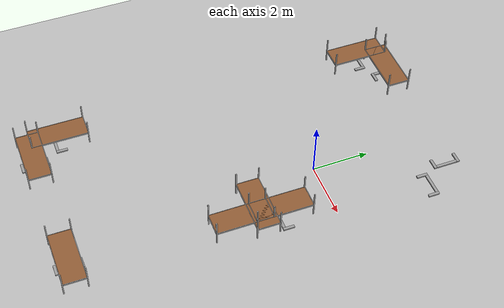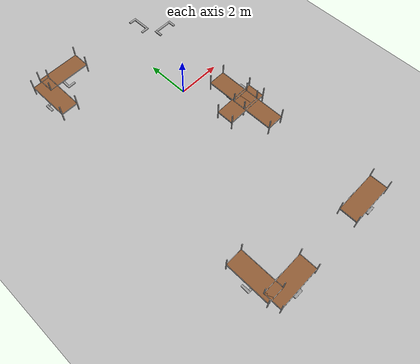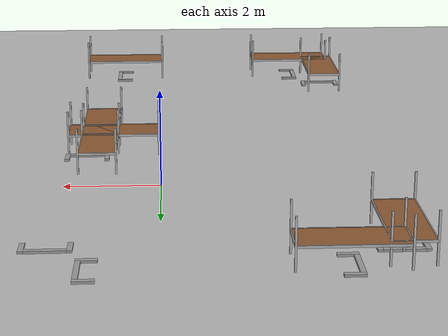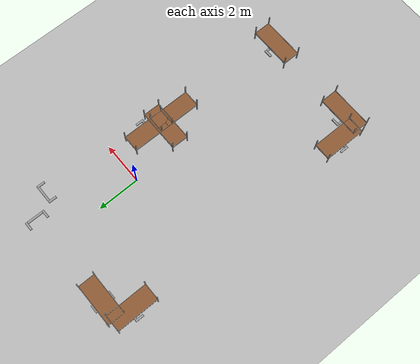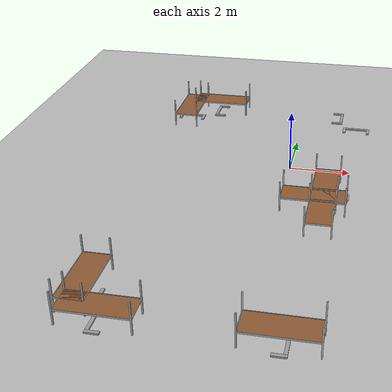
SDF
<sdf version="1.6">
 <world name="default">
  <light name="light0" type="directional">
   <pose>0 -18.818 8 0.75 -0 0</pose>
   <diffuse>0.5 0.5 0.5 1</diffuse>
   <specular>0.1 0.1 0.1 1</specular>
   <direction>0.1 0.1 -0.9</direction>
   <attenuation>
    <range>20</range>
    <constant>0.5</constant>
    <linear>0.01</linear>
    <quadratic>0.001</quadratic>
   </attenuation>
   <cast_shadows>0</cast_shadows>
  </light>
  <light name="light3" type="directional">
   <pose>3.9239 1.64974 4 0 1.2 0</pose>
   <diffuse>0.5 0.5 0.5 1</diffuse>
   <specular>0.1 0.1 0.1 1</specular>
   <direction>0.1 0.1 -0.9</direction>
   <attenuation>
    <range>20</range>
    <constant>0.5</constant>
    <linear>0.01</linear>
    <quadratic>0.001</quadratic>
   </attenuation>
   <cast_shadows>0</cast_shadows>
  </light>
  <light name="light5" type="directional">
   <pose>0.454419 12.4783 5 -0.8 0 0</pose>
   <diffuse>0.5 0.5 0.5 1</diffuse>
   <specular>0.1 0.1 0.1 1</specular>
   <direction>0.1 0.1 -0.9</direction>
   <attenuation>
    <range>20</range>
    <constant>0.5</constant>
    <linear>0.01</linear>
    <quadratic>0.001</quadratic>
   </attenuation>
   <cast_shadows>0</cast_shadows>
  </light>
  <scene>
   <shadows>false</shadows>
   <ambient>0.5 0.5 0.5 1.0</ambient>
   <grid>false</grid>
   <sky><time>22</time><sunrise>20</sunrise><sunset>21</sunset><clouds><humidity>0</humidity></clouds></sky>
  </scene>
  <include><uri>model://ground_plane</uri></include>
  <include><uri>model://moon_surface</uri><pose>0 0 -0.25 0 0 0</pose></include>
  <include><uri>model://rack_base</uri><name>rack_base</name><pose>1.421 4.35 0.05 0 -0 -1.57</pose></include>
  <include><uri>model://rack</uri><name>rack1</name><pose>1.05 -2.455 0.0 0 -0 3.14</pose></include>
  <include><uri>model://rack</uri><name>rack2</name><pose>1.35 -1.755 0.0 0 0 1.57</pose></include>
  <include><uri>model://rack</uri><name>rack3</name><pose>1.35 -3.155 0.0 0 0 -1.57</pose></include>
  <include><uri>model://rack</uri><name>rack4</name><pose>0.99 -8.86 0.1 0 -0 3.14</pose></include>
  <include><uri>model://rack</uri><name>rack5</name><pose>-3.46 -8.89 0.1 0 -0 0.0</pose></include>
  <include><uri>model://rack</uri><name>rack6</name><pose>-4.22 -7.85 0.1 0 -0 1.57</pose></include>
  <include><uri>model://rack</uri><name>rack7</name><pose>-4.28 3.52 0.1 0 -0 -1.57</pose></include>
  <include><uri>model://rack</uri><name>rack8</name><pose>-3.24 4.28 0.1 0 -0 0.0</pose></include>
  <plugin name="gazebo_link_attacher" filename="libgazebo_link_attacher.so"/>
 </world>
</sdf>

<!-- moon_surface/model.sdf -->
<sdf version="1.6">
  <model name="moon_surface">
    <static>true</static>

    <link name="link">
      <pose>0 0 0.003 0 0 0</pose>

      <visual name="visual1">
        <cast_shadows>false</cast_shadows>
        <geometry>
          <mesh><uri>model://moon_surface/meshes/moon_surface.dae</uri></mesh>
        </geometry>
        <material>
          <shader type='pixel'/>
        </material>
        <pose>0 0 0 0 0 0</pose>
        <transparency>0</transparency>
      </visual>
    </link>
  </model>
</sdf>

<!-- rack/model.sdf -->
<sdf version='1.6'>
  <model name='rack'>
    <link name="surface">
      <inertial>
          <mass>0.1</mass>
          <inertia>
              <ixx>0.00001</ixx>
              <ixy>0.000</ixy>
              <ixz>0.000</ixz>
              <iyy>0.00001</iyy>
              <iyz>0.000</iyz>
              <izz>0.00001</izz>
          </inertia>
      </inertial>
      <visual name='surface_visual'>
        <pose relative_to=''>0 0 0.45 0 0 0</pose>
        <geometry>
          <box>
            <size>2 0.8 0.03</size>
          </box>
        </geometry>
        <material>
          <ambient>0.55 0.35 0.2 1</ambient>
          <diffuse>0.55 0.35 0.2 1</diffuse>
          <specular>0.1 0.1 0.1 1</specular>
          <emissive>0 0 0 1</emissive>
        </material>
        <transparency>0</transparency>
        <cast_shadows>1</cast_shadows>
      </visual>
      <collision name='surface_collision'>
        <pose relative_to=''>0 0 0.45 0 0 0</pose>
        <laser_retro>0</laser_retro>
        <max_contacts>10</max_contacts>
        <geometry>
          <box>
            <size>2 0.82 0.03</size>
          </box>
        </geometry>
        <surface>
          <friction>
            <ode>
              <mu>1000000</mu>
              <mu2>1000000</mu2>
            </ode>
          </friction>
          <bounce>
            <restitution_coefficient>0</restitution_coefficient>
          </bounce>
          <contact>
            <ode>
              <kp>1e13</kp>
              <kd>1</kd>
            </ode>
          </contact>
        </surface>
      </collision>

      <visual name='left_holding_visual'>
        <pose relative_to=''>0 0.4 0.45 0 0 0</pose>
        <geometry>
          <box>
            <size>1.98 0.02 0.05</size>
          </box>
        </geometry>
        <material>
          <ambient>0.3 0.3 0.3 1</ambient>
          <diffuse>0.7 0.7 0.7 1</diffuse>
          <specular>0.01 0.01 0.01 1</specular>
          <emissive>0 0 0 1</emissive>
          <pbr>
            <metal>
              <roughness>0.8</roughness>
              <metalness>0.1</metalness>
            </metal>
          </pbr>
        </material>
        <transparency>0</transparency>
        <cast_shadows>1</cast_shadows>
      </visual>

      <visual name='right_holding_visual'>
        <pose relative_to=''>0 -0.4 0.45 0 0 0</pose>
        <geometry>
          <box>
            <size>1.98 0.02 0.05</size>
          </box>
        </geometry>
        <material>
          <ambient>0.3 0.3 0.3 1</ambient>
          <diffuse>0.7 0.7 0.7 1</diffuse>
          <specular>0.01 0.01 0.01 1</specular>
          <emissive>0 0 0 1</emissive>
          <pbr>
            <metal>
              <roughness>0.8</roughness>
              <metalness>0.1</metalness>
            </metal>
          </pbr>
        </material>
        <transparency>0</transparency>
        <cast_shadows>1</cast_shadows>
      </visual>

      <visual name='front_holding_visual'>
        <pose relative_to=''>1.0 0 0.45 0 0 1.57</pose>
        <geometry>
          <box>
            <size>0.8 0.02 0.05</size>
          </box>
        </geometry>
        <material>
          <ambient>0.3 0.3 0.3 1</ambient>
          <diffuse>0.7 0.7 0.7 1</diffuse>
          <specular>0.01 0.01 0.01 1</specular>
          <emissive>0 0 0 1</emissive>
          <pbr>
            <metal>
              <roughness>0.8</roughness>
              <metalness>0.1</metalness>
            </metal>
          </pbr>
        </material>
        <transparency>0</transparency>
        <cast_shadows>1</cast_shadows>
      </visual>

      <visual name='back_holding_visual'>
        <pose relative_to=''>-1.0 0 0.45 0 0 1.57</pose>
        <geometry>
          <box>
            <size>0.8 0.02 0.05</size>
          </box>
        </geometry>
        <material>
          <ambient>0.3 0.3 0.3 1</ambient>
          <diffuse>0.7 0.7 0.7 1</diffuse>
          <specular>0.01 0.01 0.01 1</specular>
          <emissive>0 0 0 1</emissive>
          <pbr>
            <metal>
              <roughness>0.8</roughness>
              <metalness>0.1</metalness>
            </metal>
          </pbr>
        </material>
        <transparency>0</transparency>
        <cast_shadows>1</cast_shadows>
      </visual>

      <visual name='front_left_leg_visual'>
        <pose relative_to=''>0.99 0.4 0.5 0 0 0</pose>
        <geometry>
          <box>
            <size>0.04 0.04 1.0</size>
          </box>
        </geometry>
        <material>
          <ambient>0.3 0.3 0.3 1</ambient>
          <diffuse>0.7 0.7 0.7 1</diffuse>
          <specular>0.01 0.01 0.01 1</specular>
          <emissive>0 0 0 1</emissive>
          <pbr>
            <metal>
              <roughness>0.8</roughness>
              <metalness>0.1</metalness>
            </metal>
          </pbr>
        </material>
        <cast_shadows>1</cast_shadows>
      </visual>
      <collision name='front_left_leg_collision'>
        <pose relative_to=''>0.99 0.4 0.5 0 0 0</pose>
        <laser_retro>0</laser_retro>
        <max_contacts>10</max_contacts>
        <geometry>
          <box>
            <size>0.04 0.04 1.0</size>
          </box>
        </geometry>
        <surface>
          <friction>
            <ode>
              <mu>0.1</mu>
              <mu2>0.1</mu2>
            </ode>
          </friction>
          <bounce>
            <restitution_coefficient>0</restitution_coefficient>
          </bounce>
          <contact>
            <ode>
              <kp>1e6</kp>
              <kd>1</kd>
            </ode>
          </contact>
        </surface>
      </collision>

      <visual name='front_right_leg_visual'>
        <pose relative_to=''>0.99 -0.4 0.5 0 0 0</pose>
        <geometry>
          <box>
            <size>0.04 0.04 1.0</size>
          </box>
        </geometry>
        <material>
          <ambient>0.3 0.3 0.3 1</ambient>
          <diffuse>0.7 0.7 0.7 1</diffuse>
          <specular>0.01 0.01 0.01 1</specular>
          <emissive>0 0 0 1</emissive>
          <pbr>
            <metal>
              <roughness>0.8</roughness>
              <metalness>0.1</metalness>
            </metal>
          </pbr>
        </material>
        <cast_shadows>1</cast_shadows>
      </visual>
      <collision name='front_right_leg_collision'>
        <pose relative_to=''>0.99 -0.4 0.5 0 0 0</pose>
        <laser_retro>0</laser_retro>
        <max_contacts>10</max_contacts>
        <geometry>
          <box>
            <size>0.04 0.04 1.0</size>
          </box>
        </geometry>
        <surface>
          <friction>
            <ode>
              <mu>0.1</mu>
              <mu2>0.1</mu2>
            </ode>
          </friction>
          <bounce>
            <restitution_coefficient>0</restitution_coefficient>
          </bounce>
          <contact>
            <ode>
              <kp>1e6</kp>
              <kd>1</kd>
            </ode>
          </contact>
        </surface>
      </collision>

      <visual name='back_left_leg_visual'>
        <pose relative_to=''>-0.99 0.4 0.5 0 0 0</pose>
        <geometry>
          <box>
            <size>0.04 0.04 1.0</size>
          </box>
        </geometry>
        <material>
          <ambient>0.3 0.3 0.3 1</ambient>
          <diffuse>0.7 0.7 0.7 1</diffuse>
          <specular>0.01 0.01 0.01 1</specular>
          <emissive>0 0 0 1</emissive>
          <pbr>
            <metal>
              <roughness>0.8</roughness>
              <metalness>0.1</metalness>
            </metal>
          </pbr>
        </material>
        <cast_shadows>1</cast_shadows>
      </visual>
      <collision name='back_left_leg_collision'>
        <pose relative_to=''>-0.99 0.4 0.5 0 0 0</pose>
        <laser_retro>0</laser_retro>
        <max_contacts>10</max_contacts>
        <geometry>
          <box>
            <size>0.04 0.04 1.0</size>
          </box>
        </geometry>
        <surface>
          <friction>
            <ode>
              <mu>0.1</mu>
              <mu2>0.1</mu2>
            </ode>
          </friction>
          <bounce>
            <restitution_coefficient>0</restitution_coefficient>
          </bounce>
          <contact>
            <ode>
              <kp>1e6</kp>
              <kd>1</kd>
            </ode>
          </contact>
        </surface>
      </collision>

      <visual name='back_right_leg_visual'>
        <pose relative_to=''>-0.99 -0.4 0.5 0 0 0</pose>
        <geometry>
          <box>
            <size>0.04 0.04 1.0</size>
          </box>
        </geometry>
        <material>
          <ambient>0.3 0.3 0.3 1</ambient>
          <diffuse>0.7 0.7 0.7 1</diffuse>
          <specular>0.01 0.01 0.01 1</specular>
          <emissive>0 0 0 1</emissive>
          <pbr>
            <metal>
              <roughness>0.8</roughness>
              <metalness>0.1</metalness>
            </metal>
          </pbr>
        </material>
        <cast_shadows>1</cast_shadows>
      </visual>
      <collision name='back_right_leg_collision'>
        <pose relative_to=''>-0.99 -0.4 0.5 0 0 0</pose>
        <laser_retro>0</laser_retro>
        <max_contacts>10</max_contacts>
        <geometry>
          <box>
            <size>0.04 0.04 1.0</size>
          </box>
        </geometry>
        <surface>
          <friction>
            <ode>
              <mu>0.1</mu>
              <mu2>0.1</mu2>
            </ode>
          </friction>
          <bounce>
            <restitution_coefficient>0</restitution_coefficient>
          </bounce>
          <contact>
            <ode>
              <kp>1e6</kp>
              <kd>1</kd>
            </ode>
          </contact>
        </surface>
      </collision>
    </link>

  </model>
</sdf>
